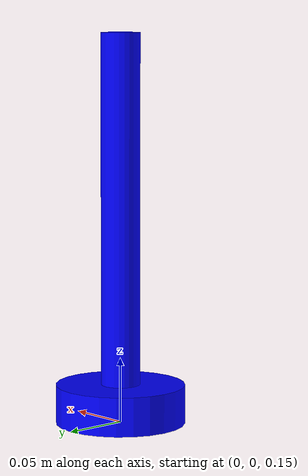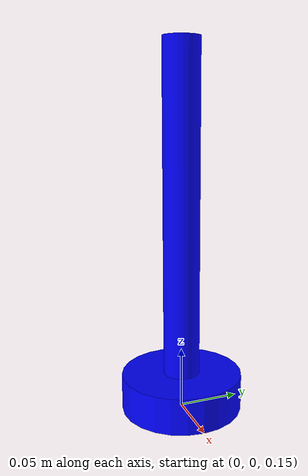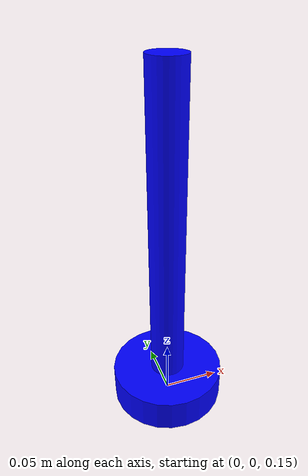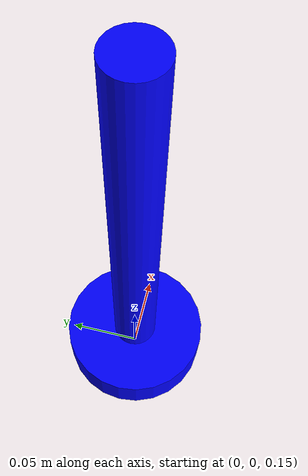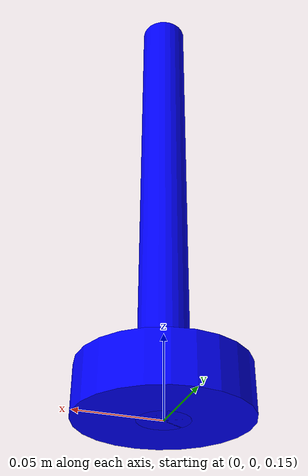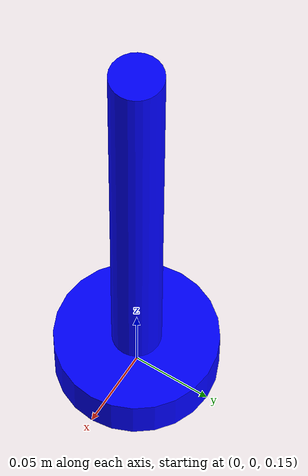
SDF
<?xml version="1.0" ?>
<sdf version="1.4">
    <model name="blue_pole">
        <static>false</static>
        <pose>0 0 0.15 0 0 0</pose>
        <link name="bar">
            <pose>0 0 0.15 0 0 0</pose>
            <visual name="bar_visual">
                <geometry>
                    <cylinder>
                        <radius>0.015</radius>
                        <length>0.3</length>
                    </cylinder>
                </geometry>
                <material>
                    <ambient>0 0 1 1</ambient>
                    <diffuse>0 0 1 1</diffuse>
                    <specular>0.1 0.1 0.1 1</specular>
                    <emissive>0 0 0 0</emissive>
                </material>
            </visual>
            <collision name="bar_collision">
                <geometry>
                    <cylinder>
                        <radius>0.015</radius>
                        <length>0.3</length>
                    </cylinder>
                </geometry>
            </collision>
            <inertial>
                <mass>0.05</mass>
                <inertia>
                    <ixx>0.0001</ixx>
                    <ixy>0</ixy>
                    <ixz>0</ixz>
                    <iyy>0.0001</iyy>
                    <iyz>0</iyz>
                    <izz>0.0001</izz>
                </inertia>
            </inertial>
        </link>
        <link name="base">
            <pose>0 0 0.015 0 0 0</pose>
            <visual name="base_visual">
                <geometry>
                    <cylinder>
                        <radius>0.05</radius>
                        <length>0.03</length>
                    </cylinder>
                </geometry>
                <material>
                    <ambient>0 0 1 1</ambient>
                    <diffuse>0 0 1 1</diffuse>
                    <specular>0.1 0.1 0.1 1</specular>
                    <emissive>0 0 0 0</emissive>
                </material>
            </visual>
            <collision name="base_collision">
                <geometry>
                    <cylinder>
                        <radius>0.05</radius>
                        <length>0.03</length>
                    </cylinder>
                </geometry>
            </collision>
            <inertial>
                <mass>0.5</mass>
                <inertia>
                    <ixx>0.0001</ixx>
                    <ixy>0</ixy>
                    <ixz>0</ixz>
                    <iyy>0.0001</iyy>
                    <iyz>0</iyz>
                    <izz>0.0001</izz>
                </inertia>
            </inertial>
        </link>
        <joint name="base_joint" type="fixed">
            <parent>bar</parent>
            <child>base</child>
        </joint>
    </model>
</sdf>
